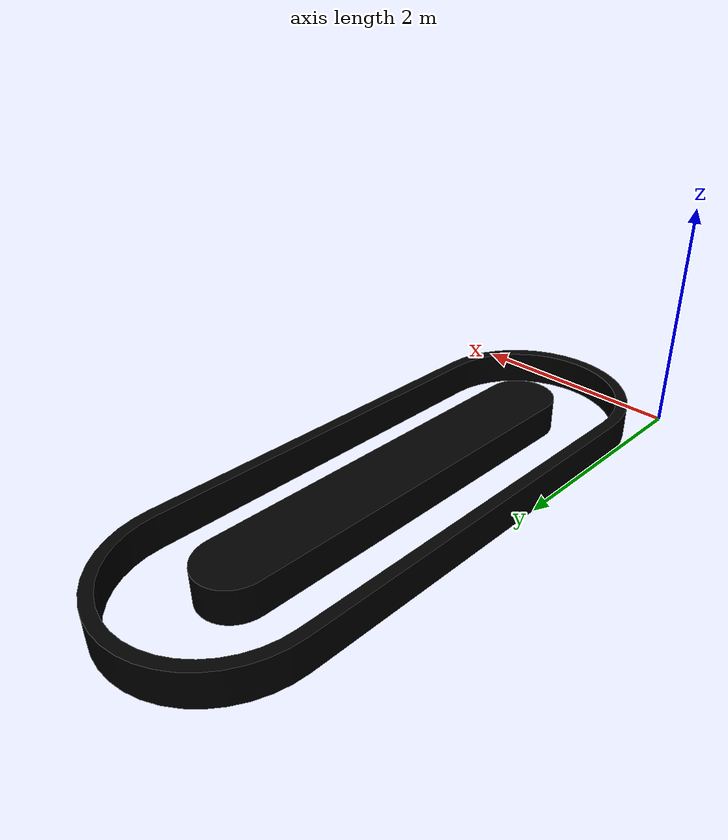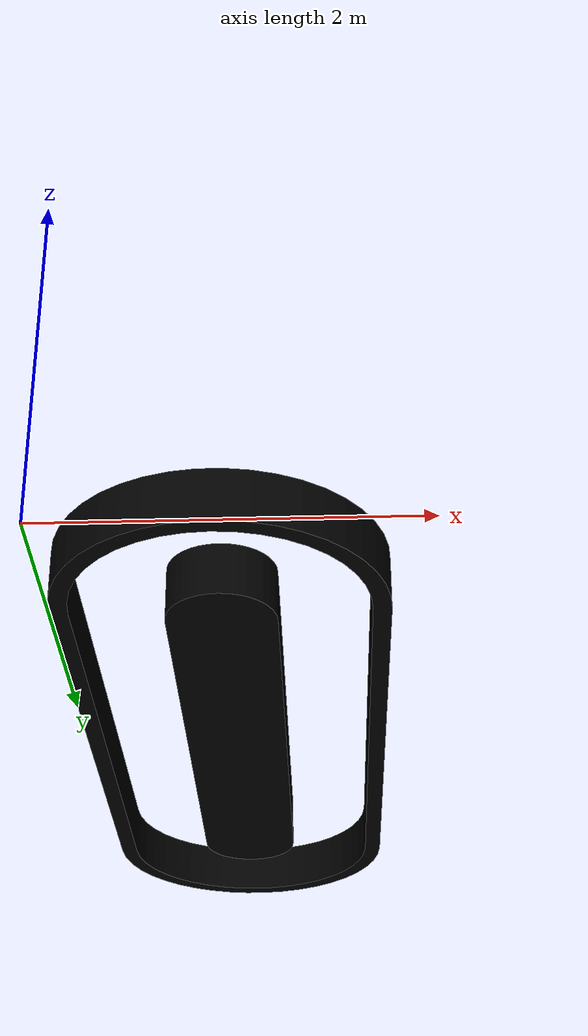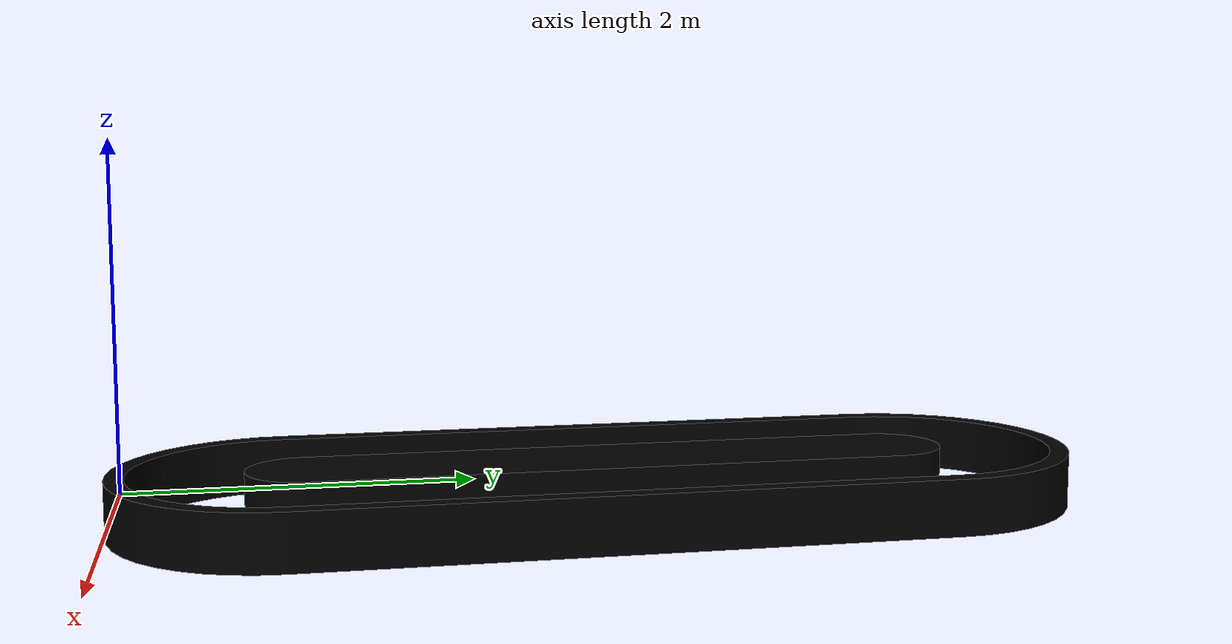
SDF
<?xml version='1.0' encoding='utf-8'?>
<sdf version="1.8">
  <model name='race_track'>
    <pose>0 0 0 0 0 0</pose>
    <self_collide>false</self_collide>
    <static>true</static>
    <link name='race_track_link'>
      <inertial>
        <pose>0.64631004421377602 -1.60579298314831 0.78294540956772607 0 0 0</pose>
        <mass>166.6218211565286</mass>
        <inertia>
          <ixx>209.1449365503087</ixx>
          <ixy>0.13742845918991969</ixy>
          <ixz>-0.00042537550653776179</ixz>
          <iyy>209.08202526128869</iyy>
          <iyz>-0.001391617962582359</iyz>
          <izz>417.93272592604683</izz>
        </inertia>
      </inertial>
      <collision name='race_track_collision'>
        <pose>0 0 0 0 0 0</pose>
        <geometry>
          <mesh>
            <scale>1 1 1</scale>
            <uri>package://yahboomcar_description/models/race_track/meshes/race_track.STL</uri>
          </mesh>
        </geometry>
      </collision>
      <visual name='race_track_visual'>
        <pose>0 0 0 0 0 0</pose>
        <geometry>
          <mesh>
            <scale>1 1 1</scale>
            <uri>package://yahboomcar_description/models/race_track/meshes/race_track.STL</uri>
          </mesh>
        </geometry>
        <material>
          <diffuse>0 0 0 1</diffuse> <!-- Black color -->
          <ambient>0 0 0 1</ambient>
        </material>
      </visual>

    </link>
  </model>
</sdf>
